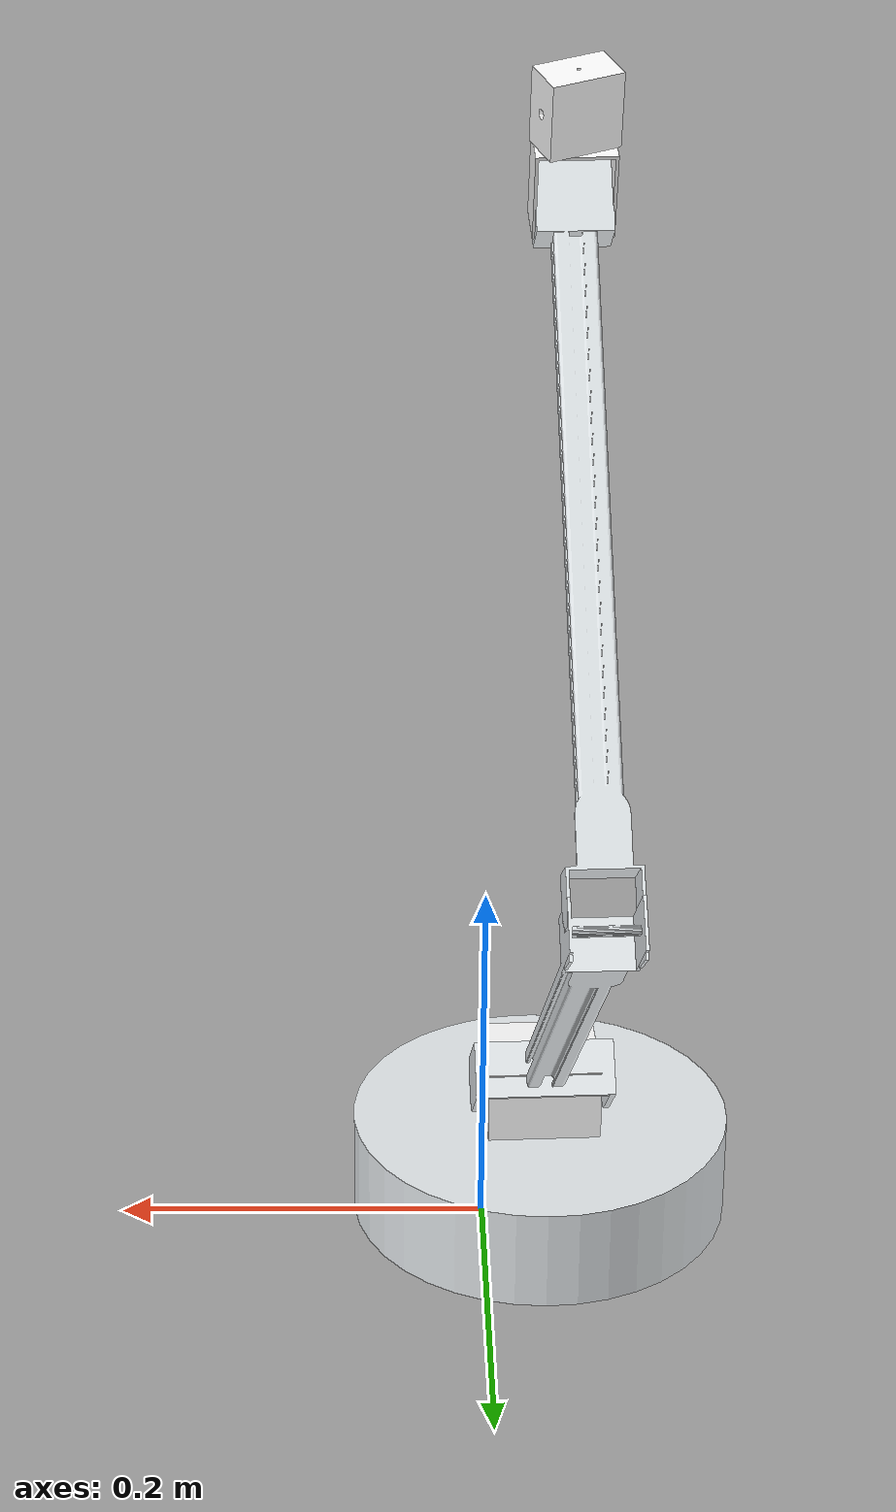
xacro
<?xml version="1.0"?>
<robot xmlns:xacro="http://www.ros.org/wiki/xacro" name="lcar_arm_urdf">
    <xacro:arg name="initial_positions_file" default="initial_positions.yaml" />

    <!-- Import lcar_arm_urdf urdf file -->
    <xacro:include filename="$(find lcar_arm_urdf)/urdf/lcar_arm_urdf.urdf" />

    <!-- Import control_xacro -->
    <xacro:include filename="lcar_arm_urdf.ros2_control.xacro" />

    <xacro:lcar_arm_urdf_ros2_control name="lcar_arm_driver/LcarArmHardwareInterface" initial_positions_file="$(arg initial_positions_file)"/>

</robot>

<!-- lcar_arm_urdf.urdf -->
<robot
  name="lcar_arm_urdf">
  <link
    name="base_link">
    <inertial>
      <origin
        xyz="-0.02926890694392 0.0335677776513082 0.0578761181628154"
        rpy="0 0 0" />
      <mass
        value="4.81415144801555" />
      <inertia
        ixx="0.013469343791239"
        ixy="-1.47432832463088E-38"
        ixz="-2.62538878256914E-35"
        iyy="0.013469343791239"
        iyz="6.69080537886196E-19"
        izz="0.024422257855332" />
    </inertial>
    <visual>
      <origin
        xyz="0 0 0"
        rpy="0 0 0" />
      <geometry>
        <mesh
          filename="package://lcar_arm_urdf/meshes/base_link.STL" />
      </geometry>
      <material
        name="">
        <color
          rgba="0.898039215686275 0.917647058823529 0.929411764705882 1" />
      </material>
    </visual>
    <collision>
      <origin
        xyz="0 0 0"
        rpy="0 0 0" />
      <geometry>
        <mesh
          filename="package://lcar_arm_urdf/meshes/base_link.STL" />
      </geometry>
    </collision>
  </link>
  <link
    name="link1">
    <inertial>
      <origin
        xyz="-7.26573697040767E-11 -0.0200000028683219 -5.53615452092426E-10"
        rpy="0 0 0" />
      <mass
        value="0.125947655057645" />
      <inertia
        ixx="4.86436700739409E-05"
        ixy="2.04272646501287E-16"
        ixz="1.44616032126546E-13"
        iyy="6.94539601888196E-05"
        iyz="2.11031418164204E-13"
        izz="5.51381735463024E-05" />
    </inertial>
    <visual>
      <origin
        xyz="0 0 0"
        rpy="0 0 0" />
      <geometry>
        <mesh
          filename="package://lcar_arm_urdf/meshes/link1.STL" />
      </geometry>
      <material
        name="">
        <color
          rgba="1 1 1 1" />
      </material>
    </visual>
    <collision>
      <origin
        xyz="0 0 0"
        rpy="0 0 0" />
      <geometry>
        <mesh
          filename="package://lcar_arm_urdf/meshes/link1.STL" />
      </geometry>
    </collision>
  </link>
  <joint
    name="joint1"
    type="continuous">
    <origin
      xyz="-0.0292689069439218 0.0335677776513077 0.0858777699921129"
      rpy="-1.5707963267949 0 0.0447978554545242" />
    <parent
      link="base_link" />
    <child
      link="link1" />
    <axis
      xyz="0 1 0" />
    <limit
      lower="-3.14"
      upper="3.14"
      effort="100"
      velocity="1" />
  </joint>
  <link
    name="link2">
    <inertial>
      <origin
        xyz="-0.153810011525643 0.000207975203657465 0.000496403569817148"
        rpy="0 0 0" />
      <mass
        value="0.204308460446307" />
      <inertia
        ixx="5.88469849389552E-05"
        ixy="-1.30852037743231E-06"
        ixz="-3.71955217993701E-07"
        iyy="0.0010557701363535"
        iyz="-4.53839171198937E-09"
        izz="0.00101653459805799" />
    </inertial>
    <visual>
      <origin
        xyz="0 0 0"
        rpy="0 0 0" />
      <geometry>
        <mesh
          filename="package://lcar_arm_urdf/meshes/link2.STL" />
      </geometry>
      <material
        name="">
        <color
          rgba="0.898039215686275 0.917647058823529 0.929411764705882 1" />
      </material>
    </visual>
    <collision>
      <origin
        xyz="0 0 0"
        rpy="0 0 0" />
      <geometry>
        <mesh
          filename="package://lcar_arm_urdf/meshes/link2.STL" />
      </geometry>
    </collision>
  </link>
  <joint
    name="joint2"
    type="continuous">
    <origin
      xyz="0 -0.0200000000000009 0"
      rpy="1.5707963267949 0.825546390557576 1.5707963267949" />
    <parent
      link="link1" />
    <child
      link="link2" />
    <axis
      xyz="0 0 1" />
    <limit
      lower="-3.14"
      upper="3.14"
      effort="100"
      velocity="1" />
  </joint>
  <link
    name="link3">
    <inertial>
      <origin
        xyz="-0.186205644816554 -0.000731438896466874 -3.97214945943372E-05"
        rpy="0 0 0" />
      <mass
        value="0.183595297698191" />
      <inertia
        ixx="1.9960713706461E-05"
        ixy="-1.30852035481437E-06"
        ixz="1.42372941999571E-08"
        iyy="0.00101057089357093"
        iyz="4.5383944075091E-09"
        izz="0.00100658599677987" />
    </inertial>
    <visual>
      <origin
        xyz="0 0 0"
        rpy="0 0 0" />
      <geometry>
        <mesh
          filename="package://lcar_arm_urdf/meshes/link3.STL" />
      </geometry>
      <material
        name="">
        <color
          rgba="0.898039215686275 0.917647058823529 0.929411764705882 1" />
      </material>
    </visual>
    <collision>
      <origin
        xyz="0 0 0"
        rpy="0 0 0" />
      <geometry>
        <mesh
          filename="package://lcar_arm_urdf/meshes/link3.STL" />
      </geometry>
    </collision>
  </link>
  <joint
    name="joint3"
    type="continuous">
    <origin
      xyz="-0.355500000000002 -0.000500000000000264 0"
      rpy="-3.14159265358979 0 1.49779550247654" />
    <parent
      link="link2" />
    <child
      link="link3" />
    <axis
      xyz="0 0 1" />
    <limit
      lower="-3.14"
      upper="3.14"
      effort="100"
      velocity="1" />
  </joint>
  <link
    name="link4">
    <inertial>
      <origin
        xyz="-0.0123553764551634 -3.10640675448975E-05 1.38777878078145E-17"
        rpy="0 0 0" />
      <mass
        value="0.00519804363608551" />
      <inertia
        ixx="1.51818586167438E-06"
        ixy="9.016268676828E-23"
        ixz="1.32348898008484E-22"
        iyy="1.23081690267317E-06"
        iyz="-1.30032792293336E-21"
        izz="2.27727214056804E-06" />
    </inertial>
    <visual>
      <origin
        xyz="0 0 0"
        rpy="0 0 0" />
      <geometry>
        <mesh
          filename="package://lcar_arm_urdf/meshes/link4.STL" />
      </geometry>
      <material
        name="">
        <color
          rgba="1 1 1 1" />
      </material>
    </visual>
    <collision>
      <origin
        xyz="0 0 0"
        rpy="0 0 0" />
      <geometry>
        <mesh
          filename="package://lcar_arm_urdf/meshes/link4.STL" />
      </geometry>
    </collision>
  </link>
  <joint
    name="joint4"
    type="continuous">
    <origin
      xyz="-0.341500000000001 -0.000499999999999723 0"
      rpy="1.5707963267949 0 0.887395066155006" />
    <parent
      link="link3" />
    <child
      link="link4" />
    <axis
      xyz="0 1 0" />
    <limit
      lower="-3.14"
      upper="3.14"
      effort="100"
      velocity="1" />
  </joint>
  <link
    name="link5">
    <inertial>
      <origin
        xyz="2.6802E-10 -1.9619E-11 -0.016953"
        rpy="0 0 0" />
      <mass
        value="0.029285" />
      <inertia
        ixx="4.8189E-06"
        ixy="-2.6955E-15"
        ixz="2.0376E-13"
        iyy="6.7801E-06"
        iyz="-2.2618E-14"
        izz="4.3867E-06" />
    </inertial>
    <visual>
      <origin
        xyz="0 0 0"
        rpy="0 0 0" />
      <geometry>
        <mesh
          filename="package://lcar_arm_urdf/meshes/link5.STL" />
      </geometry>
      <material
        name="">
        <color
          rgba="1 1 1 1" />
      </material>
    </visual>
    <collision>
      <origin
        xyz="0 0 0"
        rpy="0 0 0" />
      <geometry>
        <mesh
          filename="package://lcar_arm_urdf/meshes/link5.STL" />
      </geometry>
    </collision>
  </link>
  <joint
    name="joint5"
    type="continuous">
    <origin
      xyz="-0.0315474620790718 -3.10640675449426E-05 0"
      rpy="1.5707963267949 0.367299142897227 1.5707963267949" />
    <parent
      link="link4" />
    <child
      link="link5" />
    <axis
      xyz="0 0 1" />
    <limit
      lower="-3.14"
      upper="3.14"
      effort="100"
      velocity="1" />
  </joint>
</robot>
